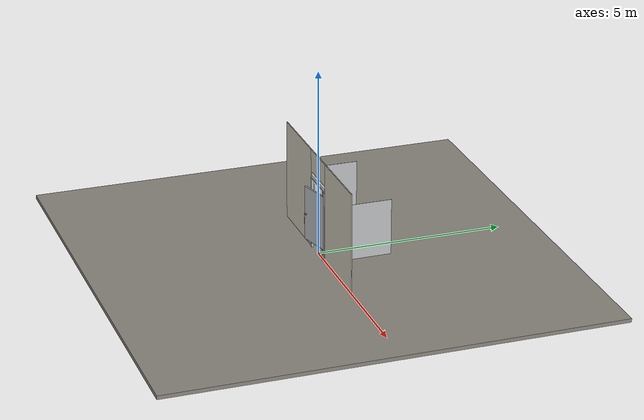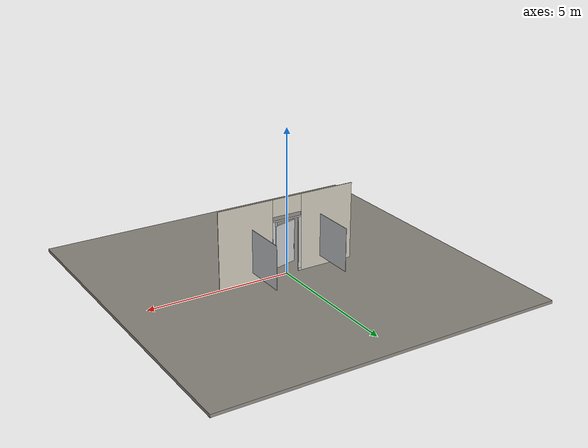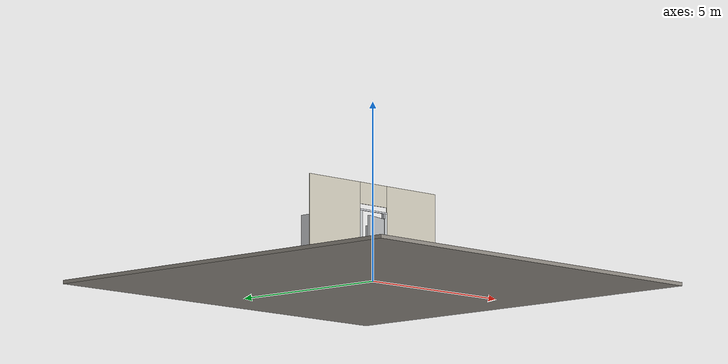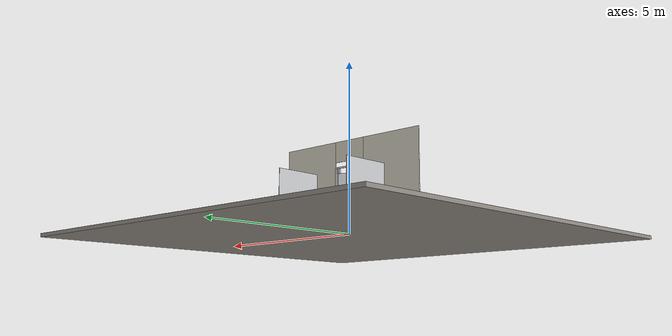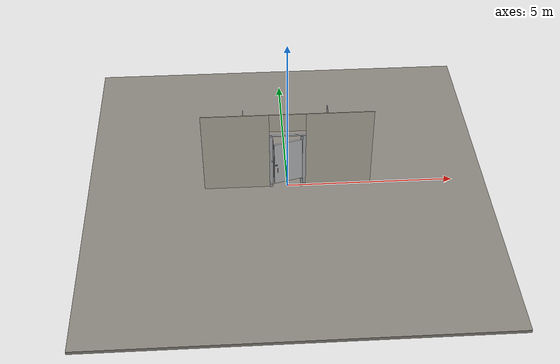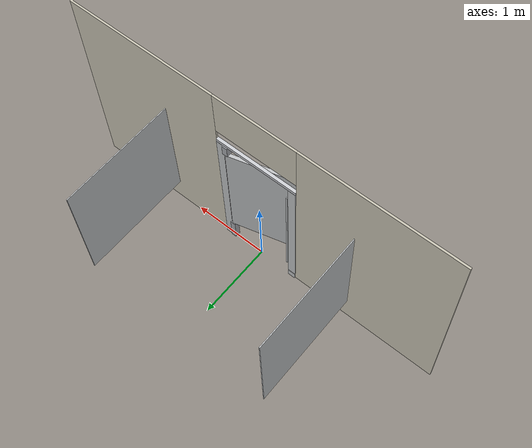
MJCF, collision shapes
<?xml version="1.0" ?>
<mujoco model="db0858_stall_full">
  <compiler angle="radian" meshdir="../../hardware" texturedir="../../textures" autolimits="true" inertiafromgeom="false"/>
  <option timestep="0.002" integrator="implicitfast" cone="elliptic" impratio="10" noslip_iterations="3">
    <flag multiccd="enable"/>
  </option>
  <size memory="16M"/>
  <default>
    <geom condim="4" solref="0.005 1" solimp="0.95 0.99 0.001"/>
    <joint solreflimit="0.005 1" solimplimit="0.95 0.99 0.001"/>
    <tendon solreflimit="0.005 1"/>
    <equality solref="0.002 1"/>
  </default>
  <visual>
    <headlight ambient="0.4 0.4 0.4" diffuse="0.7 0.7 0.7" specular="0.2 0.2 0.2"/>
    <quality shadowsize="4096"/>
    <map znear="0.01" zfar="60"/>
  </visual>
  <asset>
    <mesh name="pull_1e5d69a91a" file="pull_1e5d69a91a.obj"/>
    <material name="mat_floor" rgba="0.55 0.53 0.5 1" specular="0.2" shininess="0.15" reflectance="0"/>
    <material name="mat_wall" rgba="0.78 0.76 0.7 1" specular="0.2" shininess="0.1" reflectance="0"/>
    <material name="mat_frame" rgba="0.75 0.76 0.77 1" specular="0.8" shininess="0.65" reflectance="0.4"/>
    <material name="mat_shoe" rgba="0.75 0.76 0.77 1" specular="0.8" shininess="0.65" reflectance="0.4"/>
    <material name="mat_headrail" rgba="0.8 0.81 0.83 1" specular="0.8" shininess="0.6" reflectance="0.4"/>
    <material name="mat_leaf" rgba="0.75 0.76 0.77 1" specular="0.8" shininess="0.65" reflectance="0.4"/>
    <material name="mat_op_stainless" rgba="0.75 0.76 0.77 1" specular="0.8" shininess="0.65" reflectance="0.4"/>
    <material name="mat_hinge" rgba="0.65 0.66 0.68 1" specular="0.74" shininess="0.5" reflectance="0.36"/>
    <texture name="skybox" type="skybox" builtin="gradient" rgb1="0.6 0.7 0.85" rgb2="0.9 0.92 0.95" width="256" height="256"/>
  </asset>
  <worldbody>
    <light name="sun" pos="1.5 -2.5 4" dir="-0.3 0.5 -0.8" directional="true" diffuse="0.8 0.8 0.8" specular="0.3 0.3 0.3" castshadow="true"/>
    <light name="fill" pos="-1.5 2.5 3" dir="0.3 -0.5 -0.7" directional="true" diffuse="0.35 0.35 0.4" castshadow="false"/>
    <camera name="robot_view" pos="0 -2.59375 1.77625" xyaxes="1 0 0 0 0.26963 0.962964" fovy="52"/>
    <camera name="far_view" pos="0 2.59375 1.77625" xyaxes="-1 0 0 0 -0.26963 0.962964" fovy="52"/>
    <camera name="iso" pos="-1.97125 -2.17875 2.19125" xyaxes="0.741536 -0.670913 0 0.242917 0.268487 0.932151" fovy="46"/>
    <camera name="detail_handle" pos="-0.172967 -0.882 1.13" xyaxes="0.97561 0.219512 0 -0.070934 0.315262 0.94635" fovy="38"/>
    <geom name="floor" type="box" size="6 6 0.05" pos="0 0 -0.05" material="mat_floor" group="0" contype="1" conaffinity="1" friction="0.8 0.005 0.0001" density="2400"/>
    <geom name="wall_left" type="box" size="0.982 0.0125 1.35" pos="-1.518 0 1.35" material="mat_wall" group="0" contype="1" conaffinity="1" friction="0.6 0.005 0.0001" density="800"/>
    <geom name="wall_right" type="box" size="0.982 0.0125 1.35" pos="1.518 0 1.35" material="mat_wall" group="0" contype="1" conaffinity="1" friction="0.6 0.005 0.0001" density="800"/>
    <geom name="wall_header" type="box" size="0.536 0.0125 0.3" pos="0 0 2.4" material="mat_wall" group="0" contype="1" conaffinity="1" friction="0.6 0.005 0.0001" density="800"/>
    <geom name="pilaster_l" type="box" size="0.05 0.022 0.91" pos="-0.486 0 1.01" material="mat_frame" group="0" contype="1" conaffinity="1" friction="0.6 0.005 0.0001" density="1400"/>
    <geom name="pilaster_shoe_l" type="box" size="0.05 0.027 0.05" pos="-0.486 0 0.05" material="mat_shoe" group="1" contype="0" conaffinity="0" density="7900"/>
    <geom name="pilaster_r" type="box" size="0.05 0.022 0.91" pos="0.486 0 1.01" material="mat_frame" group="0" contype="1" conaffinity="1" friction="0.6 0.005 0.0001" density="1400"/>
    <geom name="pilaster_shoe_r" type="box" size="0.05 0.027 0.05" pos="0.486 0 0.05" material="mat_shoe" group="1" contype="0" conaffinity="0" density="7900"/>
    <geom name="headrail" type="box" size="0.536 0.02 0.02" pos="0 0 1.94" material="mat_headrail" group="0" contype="1" conaffinity="1" friction="0.6 0.005 0.0001" density="2700"/>
    <geom name="partition_l" type="box" size="0.006 0.75 0.75" pos="-1.286 0.75 1.1" material="mat_frame" group="0" contype="1" conaffinity="1" friction="0.6 0.005 0.0001" density="1400"/>
    <geom name="partition_r" type="box" size="0.006 0.75 0.75" pos="1.286 0.75 1.1" material="mat_frame" group="0" contype="1" conaffinity="1" friction="0.6 0.005 0.0001" density="1400"/>
    <geom name="latch_keeper_n" type="box" size="0.02 0.0025 0.02" pos="-0.456 -0.0375 1" material="mat_op_stainless" group="0" contype="1" conaffinity="1" friction="0.6 0.005 0.0001" density="7900"/>
    <geom name="latch_keeper_p" type="box" size="0.02 0.0025 0.02" pos="-0.456 -0.0225 1" material="mat_op_stainless" group="0" contype="1" conaffinity="1" friction="0.6 0.005 0.0001" density="7900"/>
    <geom name="latch_keeper_base" type="box" size="0.02 0.01 0.003" pos="-0.456 -0.03 0.976" material="mat_op_stainless" group="0" contype="1" conaffinity="1" friction="0.6 0.005 0.0001" density="7900"/>
    <geom name="stop_strip" type="box" size="0.01 0.006 0.735" pos="-0.426 0.028 1.035" material="mat_frame" group="0" contype="1" conaffinity="1" friction="0.6 0.005 0.0001" density="1400"/>
    <geom name="pivot_bottom_socket" type="box" size="0.035 0.035 0.154" pos="0.416 0 0.144" material="mat_hinge" group="1" contype="0" conaffinity="0" density="7850"/>
    <geom name="pivot_top_bracket" type="box" size="0.035 0.035 0.071" pos="0.416 0 1.849" material="mat_hinge" group="1" contype="0" conaffinity="0" density="7850"/>
    <site name="approach_point" pos="0 -1.2 0" quat="1 0 0 0" size="0.05" rgba="0.2 0.9 0.2 0.5" group="4"/>
    <site name="goal_point" pos="0 1 0" quat="1 0 0 0" size="0.05" rgba="0.2 0.9 0.2 0.5" group="4"/>
    <site name="door_plane_center" pos="0 0 1" quat="1 0 0 0" size="0.02" rgba="0.2 0.9 0.2 0.5" group="4"/>
    <body name="leaf_riser" pos="0.436 0 0">
      <inertial pos="0 0 0" mass="0.01" quat="1 0 0 0" diaginertia="0.000001 0.000001 0.000001"/>
      <joint name="leaf_rise" type="slide" axis="0 0 1" limited="true" range="0 0.03" damping="1" armature="0.5" ref="0.001667"/>
      <body name="leaf" pos="0 0 0">
        <inertial pos="-0.435087 -0.103252 1.029772" mass="32.038142" quat="0.564449 -0.434768 -0.557656 -0.425903" diaginertia="2.051126766 5.665624859 7.696620384"/>
        <joint name="leaf_hinge" type="hinge" axis="0 0 1" pos="-0.05 0 0" limited="true" range="0 1.919862" damping="0.195221" frictionloss="1.538312" armature="0.02" ref="0.261799"/>
        <geom name="leaf_slab" type="box" size="0.43 0.022 0.735" pos="-0.425713 -0.100672 1.035" quat="0.991445 0 0 0.130526" material="mat_leaf" group="0" contype="1" conaffinity="1" friction="0.35 0.005 0.0001" density="1"/>
        <geom name="pull_n" type="mesh" mesh="pull_1e5d69a91a" pos="-0.758093 -0.212509 0.85" quat="-0.092296 0.092296 -0.701057 0.701057" material="mat_op_stainless" group="1" contype="0" conaffinity="0" density="3000"/>
        <geom name="pull_col_n" type="capsule" size="0.0095 0.08" pos="-0.742564 -0.270465 0.85" quat="0.991445 0 0 0.130526" material="mat_op_stainless" group="3" contype="1" conaffinity="1" rgba="0.8 0.3 0.3 0.25" friction="0.7 0.01 0.0001" density="3000"/>
        <geom name="pull_p" type="mesh" mesh="pull_1e5d69a91a" pos="-0.769481 -0.170008 0.85" quat="-0.092296 -0.092296 0.701057 0.701057" material="mat_op_stainless" group="1" contype="0" conaffinity="0" density="3000"/>
        <geom name="pull_col_p" type="capsule" size="0.0095 0.08" pos="-0.78501 -0.112053 0.85" quat="0.991445 0 0 0.130526" material="mat_op_stainless" group="3" contype="1" conaffinity="1" rgba="0.8 0.3 0.3 0.25" friction="0.7 0.01 0.0001" density="3000"/>
        <geom name="slide_latch_plate" type="box" size="0.048 0.001 0.022" pos="-0.791642 -0.222534 1" quat="0.991445 0 0 0.130526" material="mat_op_stainless" group="1" contype="0" conaffinity="0" density="7900"/>
        <geom name="slide_latch_guide_leg_n" type="box" size="0.005 0.0015 0.009" pos="-0.809856 -0.235696 1.0165" quat="-0.092296 0.092296 -0.701057 0.701057" material="mat_op_stainless" group="1" contype="0" conaffinity="0" density="7800"/>
        <geom name="slide_latch_guide_leg_p" type="box" size="0.005 0.0015 0.009" pos="-0.809856 -0.235696 0.9835" quat="-0.092296 0.092296 -0.701057 0.701057" material="mat_op_stainless" group="1" contype="0" conaffinity="0" density="7800"/>
        <geom name="slide_latch_guide_bridge" type="box" size="0.005 0.018 0.0015" pos="-0.807915 -0.242941 1" quat="-0.092296 0.092296 -0.701057 0.701057" material="mat_op_stainless" group="1" contype="0" conaffinity="0" density="7800"/>
        <geom name="pivot_bottom" type="cylinder" size="0.014 0.004" pos="-0.021022 0.007765 0.295" quat="0.991445 0 0 0.130526" material="mat_hinge" group="1" contype="0" conaffinity="0" density="7850"/>
        <geom name="pivot_top" type="cylinder" size="0.014 0.004" pos="-0.021022 0.007765 1.774" quat="0.991445 0 0 0.130526" material="mat_hinge" group="1" contype="0" conaffinity="0" density="7850"/>
        <site name="pull_grip_n" pos="-0.742564 -0.270465 0.85" quat="0.991445 0 0 0.130526" size="0.012" rgba="0.2 0.9 0.2 0.5" group="4"/>
        <site name="pull_grip_p" pos="-0.78501 -0.112053 0.85" quat="0.991445 0 0 0.130526" size="0.012" rgba="0.2 0.9 0.2 0.5" group="4"/>
        <body name="slide_latch" pos="-0.785 -0.228001 1" quat="0.991445 0 0 0.130526">
          <inertial pos="0.004044 -0.001618 0" mass="0.140251" quat="0.027514 0.027514 0.706571 0.706571" diaginertia="0.000009989 0.000084063 0.000085949"/>
          <joint name="slide_latch_slide" type="slide" axis="1 0 0" limited="true" range="0 0.03" damping="0.5" frictionloss="0.5" armature="0.1" ref="0.03"/>
          <geom name="slide_latch_bar" type="box" size="0.04 0.004 0.012" pos="0 0 0" material="mat_op_stainless" group="0" contype="1" conaffinity="1" friction="0.6 0.005 0.0001" density="7900"/>
          <geom name="slide_latch_knob" type="capsule" size="0.005 0.012" pos="0.03 -0.012 0" quat="0.707107 0.707107 0 0" material="mat_op_stainless" group="0" contype="1" conaffinity="1" friction="0.6 0.005 0.0001" density="7850"/>
          <site name="grip_latch" pos="0.03 -0.03 0" quat="1 0 0 0" size="0.01" rgba="0.2 0.9 0.2 0.5" group="4"/>
        </body>
      </body>
    </body>
  </worldbody>
  <equality>
    <joint name="leaf_rise_couple" joint1="leaf_rise" joint2="leaf_hinge" polycoef="0 0.006366 0 0 0" active="true"/>
  </equality>
  <sensor>
    <jointpos name="leaf_hinge_pos" joint="leaf_hinge"/>
    <jointvel name="leaf_hinge_vel" joint="leaf_hinge"/>
    <jointpos name="slide_latch_slide_pos" joint="slide_latch_slide"/>
    <jointvel name="slide_latch_slide_vel" joint="slide_latch_slide"/>
  </sensor>
</mujoco>
